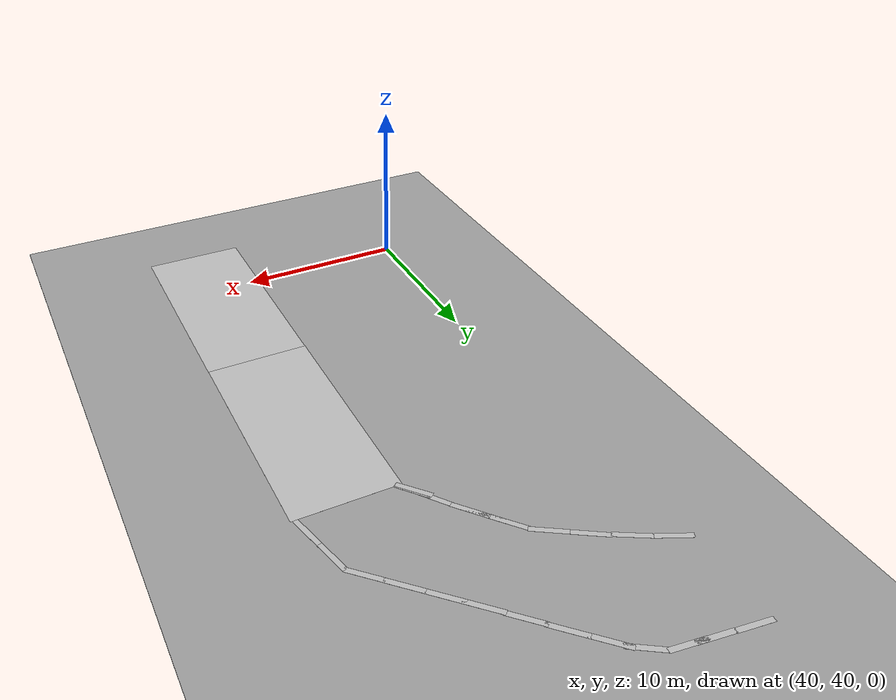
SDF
<sdf version="1.6">
 <world name="default">
  <model name="ground_plane">
   <pose>0 0 -1 0 -0 0</pose>
   <static>1</static>
   <link name="link">
    <collision name="collision">
     <geometry><plane><normal>0 0 1</normal><size>100 100</size></plane></geometry>
     <surface><friction><ode><mu>100</mu><mu2>50</mu2></ode></friction></surface>
    </collision>
    <visual name="visual">
     <cast_shadows>0</cast_shadows>
     <geometry><plane><normal>0 0 1</normal><size>100 100</size></plane></geometry>
     <material>
      <script><uri>file://media/materials/scripts/gazebo.material</uri><name>Gazebo/Grey</name></script>
     </material>
    </visual>
   </link>
  </model>
  <model name="road_4_clone_4">
   <link name="body">
    <visual name="visual">
     <geometry><mesh><uri>file://road.dae</uri></mesh></geometry>
     <material><shader type="pixel"/></material>
    </visual>
   </link>
   <static>1</static>
   <pose>52.4232 41.7004 0 0 -0 0</pose>
  </model>
  <model name="road_4_clone_5">
   <link name="body">
    <visual name="visual">
     <geometry><mesh><uri>file://road.dae</uri></mesh></geometry>
     <material><shader type="pixel"/></material>
    </visual>
   </link>
   <static>1</static>
   <pose>52.4065 54.872 0 0 -0 0</pose>
  </model>
  <model name="ground_plane_1">
   <static>1</static>
   <link name="link">
    <collision name="collision">
     <geometry><plane><normal>0 0 1</normal><size>100 100</size></plane></geometry>
     <surface>
      <contact><collide_bitmask>65535</collide_bitmask></contact>
      <friction><ode><mu>100</mu><mu2>50</mu2></ode></friction>
     </surface>
    </collision>
    <visual name="visual">
     <cast_shadows>0</cast_shadows>
     <geometry><plane><normal>0 0 1</normal><size>100 100</size></plane></geometry>
     <material>
      <script><uri>file://media/materials/scripts/gazebo.material</uri><name>Gazebo/Grey</name></script>
     </material>
    </visual>
   </link>
   <pose>36.5402 61.4232 -1 0 -0 0</pose>
  </model>
  <model name="serit_s_clone_0_clone_1_clone_0_clone_0">
   <link name="body">
    <visual name="visual">
     <geometry><mesh><uri>file://serit.dae</uri></mesh></geometry>
     <material><shader type="pixel"/></material>
    </visual>
   </link>
   <static>1</static>
   <pose>39.4393 70.1892 0 0 -0 1.14571</pose>
  </model>
  <model name="serit_s_clone_0_clone_1_clone_0_clone_1">
   <link name="body">
    <visual name="visual">
     <geometry><mesh><uri>file://serit.dae</uri></mesh></geometry>
     <material><shader type="pixel"/></material>
    </visual>
   </link>
   <static>1</static>
   <pose>41.1752 69.3144 0 0 -0 1.06541</pose>
  </model>
  <model name="serit_s_clone_0_clone_1_clone_0_clone_2">
   <link name="body">
    <visual name="visual">
     <geometry><mesh><uri>file://serit.dae</uri></mesh></geometry>
     <material><shader type="pixel"/></material>
    </visual>
   </link>
   <static>1</static>
   <pose>42.8474 68.386 0 0 -0 1.0196</pose>
  </model>
  <model name="serit_s_clone_0_clone_1_clone_0_clone_2_clone">
   <link name="body">
    <visual name="visual">
     <geometry><mesh><uri>file://serit.dae</uri></mesh></geometry>
     <material><shader type="pixel"/></material>
    </visual>
   </link>
   <static>1</static>
   <pose>44.5371 67.3374 0 0 -0 1.0196</pose>
  </model>
  <model name="serit_s_clone_0_clone_1_clone_0_clone_2_clone_0">
   <link name="body">
    <visual name="visual">
     <geometry><mesh><uri>file://serit.dae</uri></mesh></geometry>
     <material><shader type="pixel"/></material>
    </visual>
   </link>
   <static>1</static>
   <pose>49.0675 62.1016 0 0 -0 0.722342</pose>
  </model>
  <model name="serit_s_clone_0_clone_1_clone_0_clone_2_clone_1">
   <link name="body">
    <visual name="visual">
     <geometry><mesh><uri>file://serit.dae</uri></mesh></geometry>
     <material><shader type="pixel"/></material>
    </visual>
   </link>
   <static>1</static>
   <pose>45.9431 66.0984 0 0 -0 0.713129</pose>
  </model>
  <model name="serit_s_clone_0_clone_1_clone_0_clone_2_clone_2">
   <link name="body">
    <visual name="visual">
     <geometry><mesh><uri>file://serit.dae</uri></mesh></geometry>
     <material><shader type="pixel"/></material>
    </visual>
   </link>
   <static>1</static>
   <pose>47.2645 64.5469 0 0 -0 0.704428</pose>
  </model>
  <model name="serit_s_clone_0_clone_1_clone_0_clone_2_clone_3">
   <link name="body">
    <visual name="visual">
     <geometry><mesh><uri>file://serit.dae</uri></mesh></geometry>
     <material><shader type="pixel"/></material>
    </visual>
   </link>
   <static>1</static>
   <pose>48.4439 63.0591 0 0 -0 0.648795</pose>
  </model>
  <model name="serit_s_clone_0_clone_1_clone_0_clone_2_clone_2_clone">
   <link name="body">
    <visual name="visual">
     <geometry><mesh><uri>file://serit.dae</uri></mesh></geometry>
     <material><shader type="pixel"/></material>
    </visual>
   </link>
   <static>1</static>
   <pose>46.752 65.1497 0 0 -0 0.704428</pose>
  </model>
  <model name="serit_s_clone_0_clone_1_clone_0_clone_2_clone_2_clone_0">
   <link name="body">
    <visual name="visual">
     <geometry><mesh><uri>file://serit.dae</uri></mesh></geometry>
     <material><shader type="pixel"/></material>
    </visual>
   </link>
   <static>1</static>
   <pose>49.148 62.1465 0 0 -0 0.704428</pose>
  </model>
  <model name="serit_s_clone_0_clone_1_clone_0_clone_2_clone_2_clone_1">
   <link name="body">
    <visual name="visual">
     <geometry><mesh><uri>file://serit.dae</uri></mesh></geometry>
     <material><shader type="pixel"/></material>
    </visual>
   </link>
   <static>1</static>
   <pose>54.9211 62.425 0 0 -0 0.24213</pose>
  </model>
  <model name="serit_s_clone_0_clone_1_clone_0_clone_2_clone_2_clone_1_clone">
   <link name="body">
    <visual name="visual">
     <geometry><mesh><uri>file://serit.dae</uri></mesh></geometry>
     <material><shader type="pixel"/></material>
    </visual>
   </link>
   <static>1</static>
   <pose>54.4479 64.3627 0 0 -0 0.24213</pose>
  </model>
  <model name="serit_s_clone_0_clone_1_clone_0_clone_2_clone_2_clone_1_clone_0">
   <link name="body">
    <visual name="visual">
     <geometry><mesh><uri>file://serit.dae</uri></mesh></geometry>
     <material><shader type="pixel"/></material>
    </visual>
   </link>
   <static>1</static>
   <pose>53.548 65.9809 0 0 -0 0.793202</pose>
  </model>
  <model name="serit_s_clone_0_clone_1_clone_0_clone_2_clone_2_clone_1_clone_0_clone">
   <link name="body">
    <visual name="visual">
     <geometry><mesh><uri>file://serit.dae</uri></mesh></geometry>
     <material><shader type="pixel"/></material>
    </visual>
   </link>
   <static>1</static>
   <pose>52.1912 67.3279 0 0 -0 0.793202</pose>
  </model>
  <model name="serit_s_clone_0_clone_1_clone_0_clone_2_clone_2_clone_1_clone_0_clone_0">
   <link name="body">
    <visual name="visual">
     <geometry><mesh><uri>file://serit.dae</uri></mesh></geometry>
     <material><shader type="pixel"/></material>
    </visual>
   </link>
   <static>1</static>
   <pose>50.8561 68.6485 0 0 -0 0.793202</pose>
  </model>
  <model name="serit_s_clone_0_clone_1_clone_0_clone_2_clone_2_clone_1_clone_0_clone_1">
   <link name="body">
    <visual name="visual">
     <geometry><mesh><uri>file://serit.dae</uri></mesh></geometry>
     <material><shader type="pixel"/></material>
    </visual>
   </link>
   <static>1</static>
   <pose>49.589 69.9 0 0 -0 0.793202</pose>
  </model>
  <model name="serit_s_clone_0_clone_1_clone_0_clone_2_clone_2_clone_1_clone_0_clone_2">
   <link name="body">
    <visual name="visual">
     <geometry><mesh><uri>file://serit.dae</uri></mesh></geometry>
     <material><shader type="pixel"/></material>
    </visual>
   </link>
   <static>1</static>
   <pose>48.2941 71.2229 0 0 -0 0.793202</pose>
  </model>
  <model name="serit_s_clone_0_clone_1_clone_0_clone_2_clone_2_clone_1_clone_0_clone_3">
   <link name="body">
    <visual name="visual">
     <geometry><mesh><uri>file://serit.dae</uri></mesh></geometry>
     <material><shader type="pixel"/></material>
    </visual>
   </link>
   <static>1</static>
   <pose>47.0145 72.5217 0 0 -0 0.793202</pose>
  </model>
  <model name="serit_s_clone_0_clone_1_clone_0_clone_2_clone_2_clone_1_clone_0_clone_4">
   <link name="body">
    <visual name="visual">
     <geometry><mesh><uri>file://serit.dae</uri></mesh></geometry>
     <material><shader type="pixel"/></material>
    </visual>
   </link>
   <static>1</static>
   <pose>45.6951 73.8131 0 0 -0 0.793202</pose>
  </model>
  <model name="serit_s_clone_0_clone_1_clone_0_clone_2_clone_2_clone_1_clone_0_clone_5">
   <link name="body">
    <visual name="visual">
     <geometry><mesh><uri>file://serit.dae</uri></mesh></geometry>
     <material><shader type="pixel"/></material>
    </visual>
   </link>
   <static>1</static>
   <pose>39.65 75.7998 0 0 -0 1.44199</pose>
  </model>
  <model name="serit_s_clone_0_clone_1_clone_0_clone_2_clone_2_clone_1_clone_0_clone_5_clone">
   <link name="body">
    <visual name="visual">
     <geometry><mesh><uri>file://serit.dae</uri></mesh></geometry>
     <material><shader type="pixel"/></material>
    </visual>
   </link>
   <static>1</static>
   <pose>41.56 75.5367 0 0 -0 1.44199</pose>
  </model>
  <model name="serit_s_clone_0_clone_1_clone_0_clone_2_clone_2_clone_1_clone_0_clone_5_clone_0">
   <link name="body">
    <visual name="visual">
     <geometry><mesh><uri>file://serit.dae</uri></mesh></geometry>
     <material><shader type="pixel"/></material>
    </visual>
   </link>
   <static>1</static>
   <pose>42.8557 75.3531 0 0 -0 1.44199</pose>
  </model>
  <model name="serit_s_clone_0_clone_1_clone_0_clone_2_clone_2_clone_1_clone_0_clone_5_clone_1">
   <link name="body">
    <visual name="visual">
     <geometry><mesh><uri>file://serit.dae</uri></mesh></geometry>
     <material><shader type="pixel"/></material>
    </visual>
   </link>
   <static>1</static>
   <pose>44.5364 74.7416 0 0 -0 1.00789</pose>
  </model>
 </world>
</sdf>
